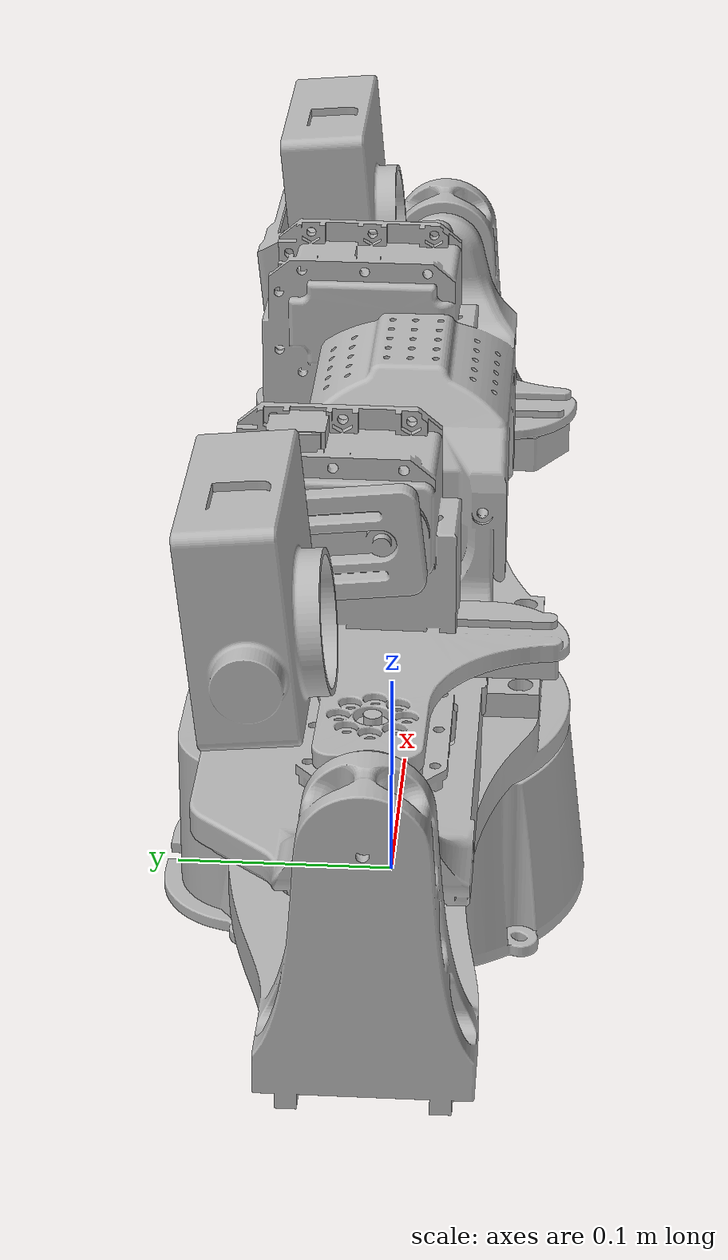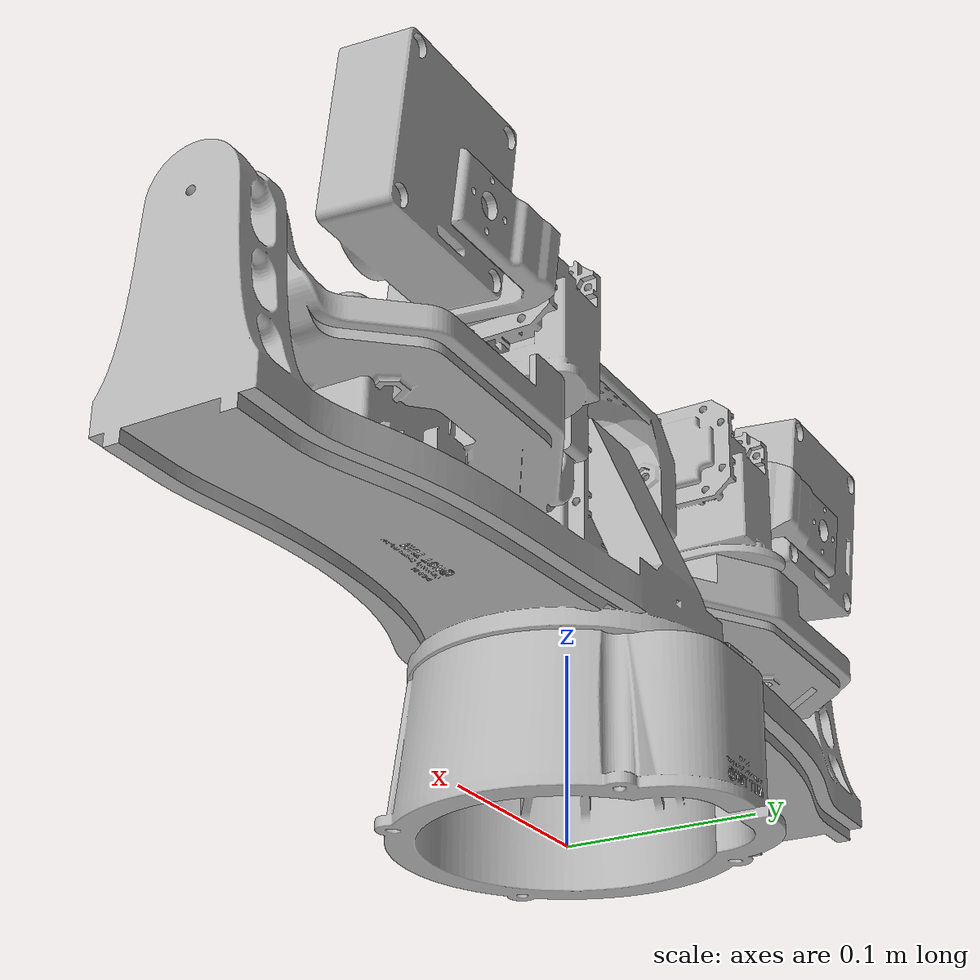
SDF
<sdf version='1.6'>
  <model name='RobotHeadFinal'>
    <link name='root_link'>
      <pose frame=''>0 0 0 0 -0 0</pose>
      <inertial>
        <pose frame=''>0 0 0 0 -0 0</pose>
        <mass>100</mass>
        <inertia>
          <ixx>1.61792</ixx>
          <ixy>0</ixy>
          <ixz>0</ixz>
          <iyy>1.60462</iyy>
          <iyz>0</iyz>
          <izz>1.61792</izz>
        </inertia>
      </inertial>
      <collision name='root_link_fixed_joint_lump__RHM1_link_collision'>
        <pose frame=''>0 0 0 0 -0 0</pose>
        <geometry>
          <mesh>
            <scale>1 1 1</scale>
            <uri>model://TUM_Head/collisions/COL_VIZ_RHM1_link_0_convex_hull.dae</uri>
          </mesh>
        </geometry>
      </collision>
      <visual name='root_link_fixed_joint_lump__RHM1_link_visual'>
        <pose frame=''>0 0 0 0 -0 0</pose>
        <geometry>
          <mesh>
            <scale>1 1 1</scale>
            <uri>model://TUM_Head/meshes/VIZ_RHM1_link_0.dae</uri>
          </mesh>
        </geometry>
      </visual>
    </link>
    <link name='RHM0_link'>
      <pose frame=''>0 0 0.201153 0 -0 0</pose>
      <inertial>
        <pose frame=''>0 0 0 0 -0 0</pose>
        <mass>0.01</mass>
        <inertia>
          <ixx>1.61792</ixx>
          <ixy>0</ixy>
          <ixz>0</ixz>
          <iyy>1.60462</iyy>
          <iyz>0</iyz>
          <izz>1.61792</izz>
        </inertia>
      </inertial>
      <collision name='RHM0_link_collision'>
        <pose frame=''>0 0 -0.201153 0 -0 0</pose>
        <geometry>
          <mesh>
            <scale>1 1 1</scale>
            <uri>model://TUM_Head/collisions/COL_VIZ_RHM0_link_0_convex_hull.dae</uri>
          </mesh>
        </geometry>
      </collision>
      <visual name='RHM0_link_visual'>
        <pose frame=''>0 0 -0.201153 0 -0 0</pose>
        <geometry>
          <mesh>
            <scale>1 1 1</scale>
            <uri>model://TUM_Head/meshes/VIZ_RHM0_link_0.dae</uri>
          </mesh>
        </geometry>
      </visual>
    </link>
    <joint name='RHM0_joint' type='revolute'>
      <child>RHM0_link</child>
      <parent>root_link</parent>
      <axis>
        <xyz>0 0 1</xyz>
        <limit>
          <lower>-1.5708</lower>
          <upper>1.5708</upper>
          <effort>100</effort>
          <velocity>1</velocity>
        </limit>
        <dynamics>
          <damping>1</damping>
          <friction>0</friction>
          <spring_reference>0</spring_reference>
          <spring_stiffness>0</spring_stiffness>
        </dynamics>
        <use_parent_model_frame>1</use_parent_model_frame>
      </axis>
    </joint>
    <link name='SwingXAxis_link'>
      <pose frame=''>0.067051 0 0.201153 0 -0 0</pose>
      <inertial>
        <pose frame=''>-0.044701 0 0 0 -0 0</pose>
        <mass>0.03</mass>
        <inertia>
          <ixx>4.85375</ixx>
          <ixy>0</ixy>
          <ixz>0</ixz>
          <iyy>4.81457</iyy>
          <iyz>0</iyz>
          <izz>4.85446</izz>
        </inertia>
      </inertial>
      <collision name='SwingXAxis_link_collision'>
        <pose frame=''>-0.067051 -0 -0.201153 0 -0 0</pose>
        <geometry>
          <mesh>
            <scale>1 1 1</scale>
            <uri>model://TUM_Head/collisions/COL_VIZ_SwingXAxis_link_0_convex_hull.dae</uri>
          </mesh>
        </geometry>
      </collision>
      <visual name='SwingXAxis_link_visual'>
        <pose frame=''>-0.067051 -0 -0.201153 0 -0 0</pose>
        <geometry>
          <mesh>
            <scale>1 1 1</scale>
            <uri>model://TUM_Head/meshes/VIZ_SwingXAxis_link_0.dae</uri>
          </mesh>
        </geometry>
      </visual>
    </link>
    <joint name='SwingXAxis_joint' type='revolute'>
      <child>SwingXAxis_link</child>
      <parent>RHM0_link</parent>
      <axis>
        <xyz>1 0 0</xyz>
        <limit>
          <lower>-1.5708</lower>
          <upper>1.5708</upper>
          <effort>100</effort>
          <velocity>1</velocity>
        </limit>
        <dynamics>
          <damping>1</damping>
          <friction>0</friction>
          <spring_reference>0</spring_reference>
          <spring_stiffness>0</spring_stiffness>
        </dynamics>
        <use_parent_model_frame>1</use_parent_model_frame>
      </axis>
    </joint>
    <link name='ArmLeftZAxis_link'>
      <pose frame=''>-0.18439 0 0.201153 0 -0 0</pose>
      <inertial>
        <pose frame=''>0.033526 0 0.025144 0 -0 0</pose>
        <mass>0.02</mass>
        <inertia>
          <ixx>3.23584</ixx>
          <ixy>0</ixy>
          <ixz>-1.68594e-05</ixz>
          <iyy>3.20928</iyy>
          <iyz>0</iyz>
          <izz>3.23585</izz>
        </inertia>
      </inertial>
      <collision name='ArmLeftZAxis_link_collision'>
        <pose frame=''>0.18439 0 -0.201153 0 -0 0</pose>
        <geometry>
          <mesh>
            <scale>1 1 1</scale>
            <uri>model://TUM_Head/collisions/COL_VIZ_ArmLeftZAxis_link_0_convex_hull.dae</uri>
          </mesh>
        </geometry>
      </collision>
      <visual name='ArmLeftZAxis_link_visual'>
        <pose frame=''>0.18439 0 -0.201153 0 -0 0</pose>
        <geometry>
          <mesh>
            <scale>1 1 1</scale>
            <uri>model://TUM_Head/meshes/VIZ_ArmLeftZAxis_link_0.dae</uri>
          </mesh>
        </geometry>
      </visual>
    </link>
    <joint name='ArmLeftZAxis_joint' type='revolute'>
      <child>ArmLeftZAxis_link</child>
      <parent>SwingXAxis_link</parent>
      <axis>
        <xyz>0 0 1</xyz>
        <limit>
          <lower>-1.5708</lower>
          <upper>1.5708</upper>
          <effort>100</effort>
          <velocity>1</velocity>
        </limit>
        <dynamics>
          <damping>1</damping>
          <friction>0</friction>
          <spring_reference>0</spring_reference>
          <spring_stiffness>0</spring_stiffness>
        </dynamics>
        <use_parent_model_frame>1</use_parent_model_frame>
      </axis>
    </joint>
    <link name='CameraMountLeftXAxis_link'>
      <pose frame=''>-0.150865 0 0.251441 0 -0 0</pose>
      <inertial>
        <pose frame=''>-0.045455 0 0 0 -0 0</pose>
        <mass>0.11</mass>
        <inertia>
          <ixx>2.61792</ixx>
          <ixy>0</ixy>
          <ixz>0</ixz>
          <iyy>2.60464</iyy>
          <iyz>0</iyz>
          <izz>2.61794</izz>
        </inertia>
      </inertial>
      <collision name='CameraMountLeftXAxis_link_collision'>
        <pose frame=''>0.150865 0 -0.251441 -0 -0 -0</pose>
        <geometry>
          <mesh>
            <scale>1 1 1</scale>
            <uri>model://TUM_Head/collisions/COL_VIZ_CameraMountLeftXAxis_convex_hull.dae</uri>
          </mesh>
        </geometry>
      </collision>
      <collision name='CameraMountLeftXAxis_link_fixed_joint_lump__cameraleft_link_collision_1'>
        <pose frame=''>0.150865 0 -0.251441 -0 -0 -0</pose>
        <geometry>
          <mesh>
            <scale>1 1 1</scale>
            <uri>model://TUM_Head/collisions/COL_cameraleft_convex_hull.dae</uri>
          </mesh>
        </geometry>
      </collision>
      <visual name='CameraMountLeftXAxis_link_visual'>
        <pose frame=''>0.150865 -0.06 -0.245 -0.251999 -0 -0</pose>
        <geometry>
          <mesh>
            <scale>1 1 1</scale>
            <uri>model://TUM_Head/meshes/VIZ_CameraMountLeftXAxis.dae</uri>
          </mesh>
        </geometry>
      </visual>
      <visual name='CameraMountLeftXAxis_link_fixed_joint_lump__cameraleft_link_visual_1'>
        <pose frame=''>0.150865 -0.06 -0.245 -0.251999 -0 -0</pose>
        <geometry>
          <mesh>
            <scale>1 1 1</scale>
            <uri>model://TUM_Head/meshes/cameraleft.dae</uri>
          </mesh>
        </geometry>
      </visual>
      <gravity>1</gravity>
      <velocity_decay/>
      <self_collide>0</self_collide>
      <sensor name='camera_dvs_right' type='camera'>
        <visualize>1</visualize>
        <camera name='camera_dvs_right'>
          <horizontal_fov>1.047</horizontal_fov>
          <image>
            <width>128</width>
            <height>128</height>
          </image>
          <clip>
            <near>0.1</near>
            <far>100</far>
          </clip>
        </camera>
        <always_on>1</always_on>
        <update_rate>60</update_rate>
        <visualize>0</visualize>
        <plugin name='camera_controller' filename='libgazebo_dvs_plugin.so'>
          <cameraName>dvs_right</cameraName>
          <robotNamespace>head</robotNamespace>
          <eventThreshold>10</eventThreshold>
          <cameraInfoTopicName>camera_info</cameraInfoTopicName>
        </plugin>
        <pose frame=''>-0.05 1e-05 0 0 0 -1.5708</pose>
      </sensor>
    </link>
    <joint name='CameraMountLeftXAxis_joint' type='revolute'>
      <child>CameraMountLeftXAxis_link</child>
      <parent>ArmLeftZAxis_link</parent>
      <axis>
        <xyz>1 0 0</xyz>
        <limit>
          <lower>-1.5708</lower>
          <upper>1.5708</upper>
          <effort>100</effort>
          <velocity>1</velocity>
        </limit>
        <dynamics>
          <damping>1</damping>
          <friction>0</friction>
          <spring_reference>0</spring_reference>
          <spring_stiffness>0</spring_stiffness>
        </dynamics>
        <use_parent_model_frame>1</use_parent_model_frame>
      </axis>
    </joint>
    <link name='ArmRightZAxis_link'>
      <pose frame=''>0.18439 0 0.201153 0 -0 0</pose>
      <inertial>
        <pose frame=''>-0.033526 0 0.025144 0 -0 0</pose>
        <mass>0.02</mass>
        <inertia>
          <ixx>3.23584</ixx>
          <ixy>0</ixy>
          <ixz>1.68594e-05</ixz>
          <iyy>3.20928</iyy>
          <iyz>0</iyz>
          <izz>3.23585</izz>
        </inertia>
      </inertial>
      <collision name='ArmRightZAxis_link_collision'>
        <pose frame=''>-0.18439 0 -0.201153 0 0 -0</pose>
        <geometry>
          <mesh>
            <scale>1 1 1</scale>
            <uri>model://TUM_Head/collisions/COL_VIZ_ArmRightZAxis_link_0_convex_hull.dae</uri>
          </mesh>
        </geometry>
      </collision>
      <visual name='ArmRightZAxis_link_visual'>
        <pose frame=''>-0.18439 0 -0.201153 0 0 -0</pose>
        <geometry>
          <mesh>
            <scale>1 1 1</scale>
            <uri>model://TUM_Head/meshes/VIZ_ArmRightZAxis_link_0.dae</uri>
          </mesh>
        </geometry>
      </visual>
    </link>
    <joint name='ArmRightZAxis_joint' type='revolute'>
      <child>ArmRightZAxis_link</child>
      <parent>SwingXAxis_link</parent>
      <axis>
        <xyz>0 0 1</xyz>
        <limit>
          <lower>-1.5708</lower>
          <upper>1.5708</upper>
          <effort>100</effort>
          <velocity>1</velocity>
        </limit>
        <dynamics>
          <damping>1</damping>
          <friction>0</friction>
          <spring_reference>0</spring_reference>
          <spring_stiffness>0</spring_stiffness>
        </dynamics>
        <use_parent_model_frame>1</use_parent_model_frame>
      </axis>
    </joint>
    <link name='CameraMountRightXAxis_link'>
      <pose frame=''>0.150865 0 0.251441 0 -0 0</pose>
      <inertial>
        <pose frame=''>0.047619 5e-06 0 0 -0 0</pose>
        <mass>0.21</mass>
        <inertia>
          <ixx>3.61792</ixx>
          <ixy>-2.38095e-09</ixy>
          <ixz>0</ixz>
          <iyy>3.60464</iyy>
          <iyz>0</iyz>
          <izz>3.61794</izz>
        </inertia>
      </inertial>
      <collision name='CameraMountRightXAxis_link_collision'>
        <pose frame=''>-0.150865 -0 -0.251441 -0 0 0</pose>
        <geometry>
          <mesh>
            <scale>1 1 1</scale>
            <uri>model://TUM_Head/collisions/COL_VIZ_CameraMountRightXAxis_convex_hull.dae</uri>
          </mesh>
        </geometry>
      </collision>
      <collision name='CameraMountRightXAxis_link_fixed_joint_lump__cameraright_link_collision_1'>
        <pose frame=''>-0.150865 -0 -0.251441 -0 0 0</pose>
        <geometry>
          <mesh>
            <scale>1 1 1</scale>
            <uri>model://TUM_Head/collisions/COL_cameraright_convex_hull.dae</uri>
          </mesh>
        </geometry>
      </collision>
      <visual name='CameraMountRightXAxis_link_visual'>
        <pose frame=''>-0.150865 -0 -0.251441 -0 0 0</pose>
        <geometry>
          <mesh>
            <scale>1 1 1</scale>
            <uri>model://TUM_Head/meshes/VIZ_CameraMountRightXAxis.dae</uri>
          </mesh>
        </geometry>
      </visual>
      <visual name='CameraMountRightXAxis_link_fixed_joint_lump__cameraright_link_visual_1'>
        <pose frame=''>-0.150865 -0 -0.251441 -0 0 0</pose>
        <geometry>
          <mesh>
            <scale>1 1 1</scale>
            <uri>model://TUM_Head/meshes/cameraright.dae</uri>
          </mesh>
        </geometry>
      </visual>
      <gravity>1</gravity>
      <velocity_decay/>
      <self_collide>0</self_collide>
      <sensor name='camera_dvs_left' type='camera'>
        <visualize>1</visualize>
        <camera name='camera_dvs_left'>
          <horizontal_fov>1.047</horizontal_fov>
          <image>
            <width>128</width>
            <height>128</height>
          </image>
          <clip>
            <near>0.1</near>
            <far>100</far>
          </clip>
        </camera>
        <always_on>1</always_on>
        <update_rate>60</update_rate>
        <visualize>0</visualize>
        <plugin name='camera_controller' filename='libgazebo_dvs_plugin.so'>
          <cameraName>dvs_left</cameraName>
          <robotNamespace>head</robotNamespace>
          <eventThreshold>10</eventThreshold>
          <cameraInfoTopicName>camera_info</cameraInfoTopicName>
        </plugin>
        <pose frame=''>0.05 1e-05 0 0 0 -1.5708</pose>
      </sensor>
    </link>
    <joint name='CameraMountRightXAxis_joint' type='revolute'>
      <child>CameraMountRightXAxis_link</child>
      <parent>ArmRightZAxis_link</parent>
      <axis>
        <xyz>1 0 0</xyz>
        <limit>
          <lower>-1.5708</lower>
          <upper>1.5708</upper>
          <effort>100</effort>
          <velocity>1</velocity>
        </limit>
        <dynamics>
          <damping>1</damping>
          <friction>0</friction>
          <spring_reference>0</spring_reference>
          <spring_stiffness>0</spring_stiffness>
        </dynamics>
        <use_parent_model_frame>1</use_parent_model_frame>
      </axis>
    </joint>
    <static>0</static>
    <plugin name='generic_controller' filename='libgeneric_controller_plugin.so'>
      <controller joint_name='RHM1_joint'>
        <type>position</type>
        <pid>20 2 30</pid>
      </controller>
      <controller joint_name='RHM0_joint'>
        <type>position</type>
        <pid>20 2 30</pid>
      </controller>
      <controller joint_name='SwingXAxis_joint'>
        <type>position</type>
        <pid>20 2 30</pid>
      </controller>
      <controller joint_name='ServoLeft_joint'>
        <type>position</type>
        <pid>20 2 30</pid>
      </controller>
      <controller joint_name='ArmLeftZAxis_joint'>
        <type>position</type>
        <pid>20 2 30</pid>
      </controller>
      <controller joint_name='CameraMountLeftServo_joint'>
        <type>position</type>
        <pid>20 2 30</pid>
      </controller>
      <controller joint_name='CameraMountLeftXAxis_joint'>
        <type>position</type>
        <pid>20 2 30</pid>
      </controller>
      <controller joint_name='cameraleft_joint'>
        <type>position</type>
        <pid>20 2 30</pid>
      </controller>
      <controller joint_name='ServoRight_joint'>
        <type>position</type>
        <pid>20 2 30</pid>
      </controller>
      <controller joint_name='ArmRightZAxis_joint'>
        <type>position</type>
        <pid>20 2 30</pid>
      </controller>
      <controller joint_name='CameraMountRightServo_joint'>
        <type>position</type>
        <pid>20 2 30</pid>
      </controller>
      <controller joint_name='CameraMountRightXAxis_joint'>
        <type>position</type>
        <pid>20 2 30</pid>
      </controller>
      <controller joint_name='cameraright_joint'>
        <type>position</type>
        <pid>20 2 30</pid>
      </controller>
    </plugin>
  </model>
</sdf>
